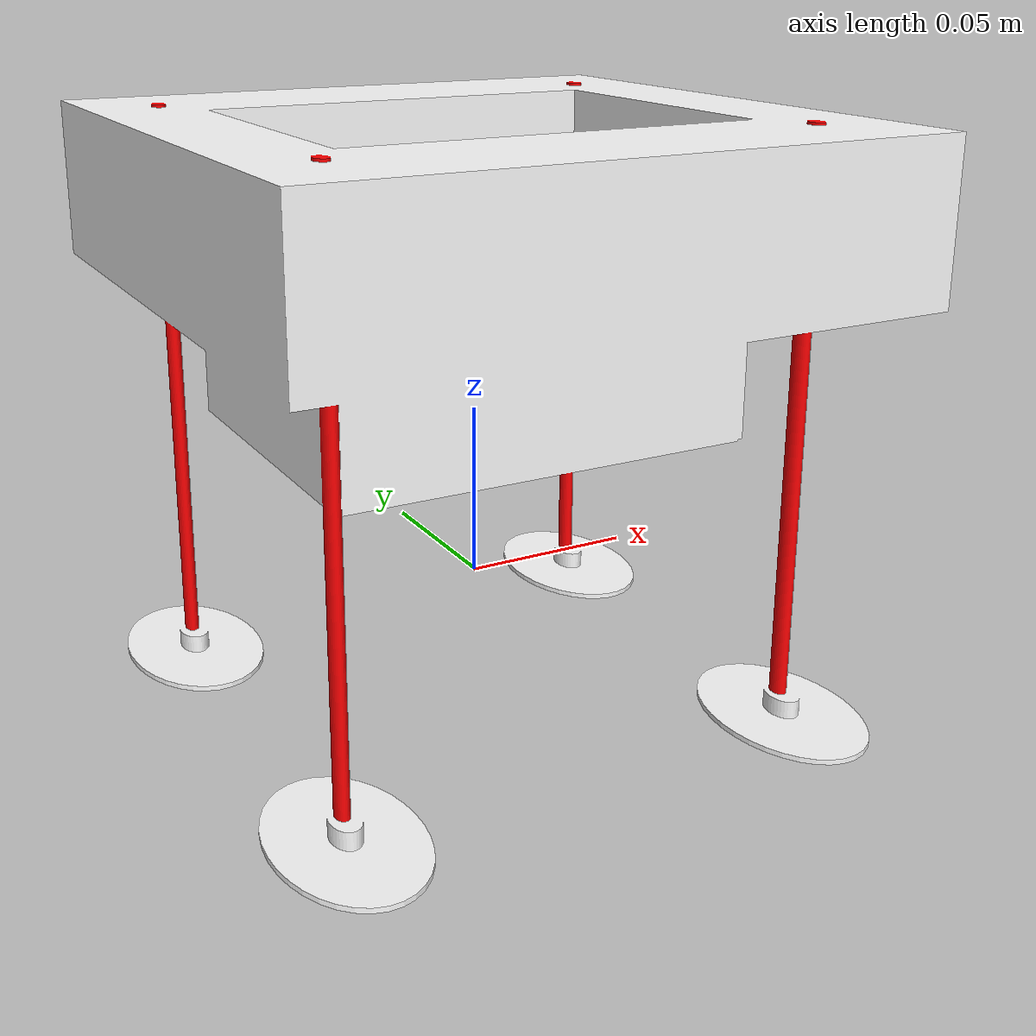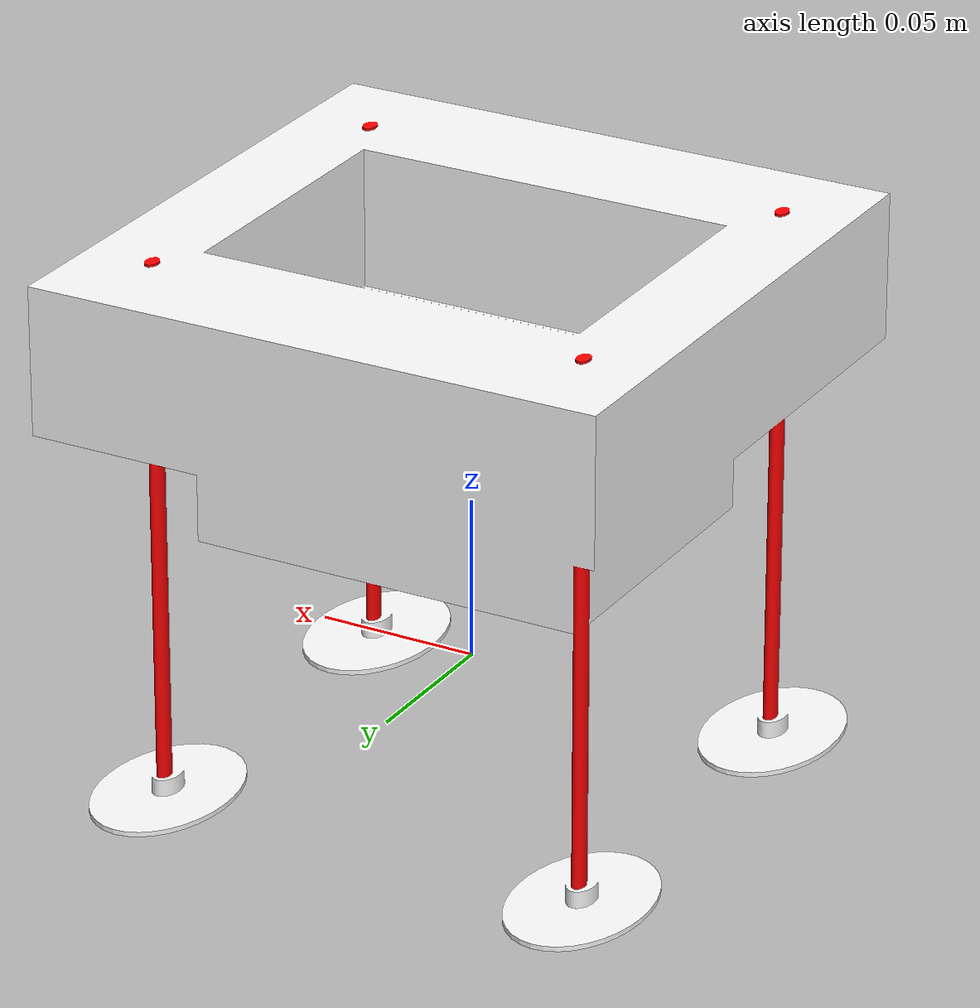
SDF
<?xml version='1.0'?>
<sdf version='1.6'>
  <model name='bin_4_dropping_task'>
    <link name='bin'>
      <pose>0 0 0 0 0 0</pose>
      <collision name ='bin_collision'>
        <geometry>
          <mesh>
            <uri>meshes/bin_4_dropping_task.dae</uri>
            <scale>0.2 0.3 0.3</scale>
          </mesh>
        </geometry>
      </collision>
      <visual name='bin_visual'>
        <geometry>
          <mesh>
            <uri>meshes/bin_4_dropping_task.dae</uri>
            <scale>0.2 0.3 0.3</scale>
          </mesh>
        </geometry>
      </visual>
    </link>
    <static>true</static>
  </model>
</sdf>
